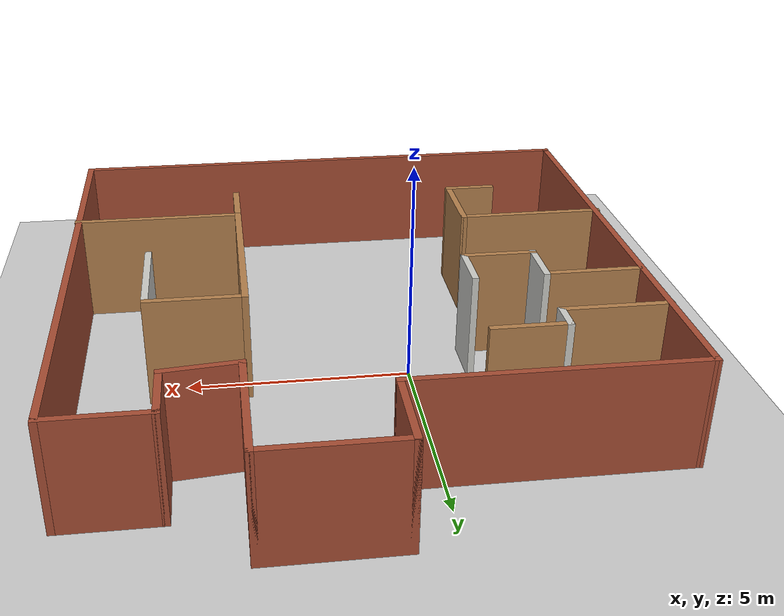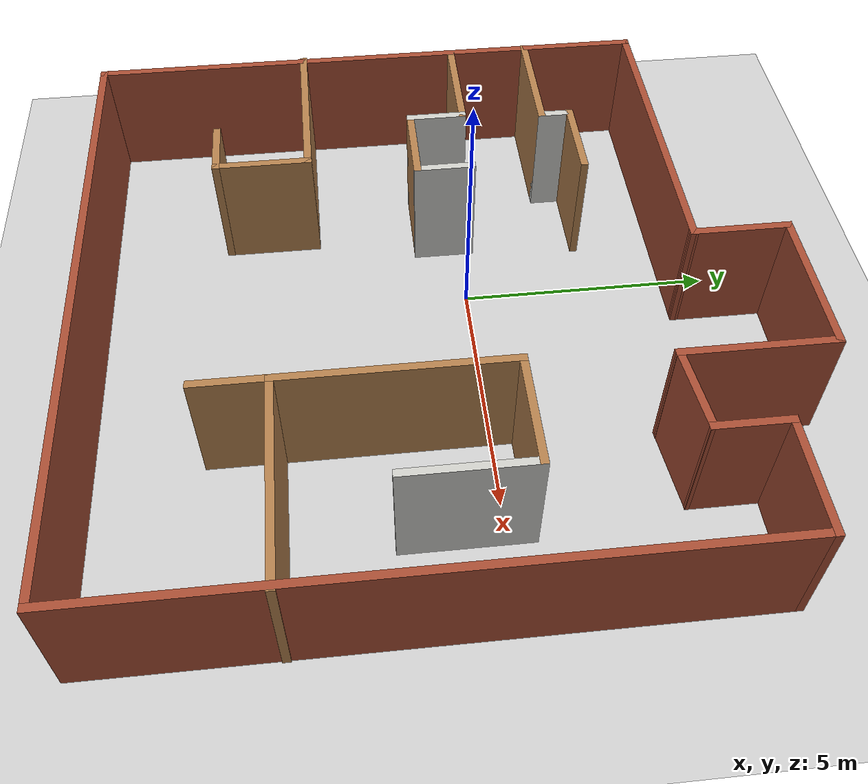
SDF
<sdf version="1.6">
 <world name="default">
  <light name="sun" type="directional">
   <pose>0 0 10 0 -0 0</pose>
   <diffuse>0.8 0.8 0.8 1</diffuse>
   <specular>0.2 0.2 0.2 1</specular>
   <attenuation>
    <range>1000</range>
    <constant>0.9</constant>
    <linear>0.01</linear>
    <quadratic>0.001</quadratic>
   </attenuation>
   <direction>-0.5 0.1 -0.9</direction>
  </light>
  <model name="ground_plane">
   <static>1</static>
   <link name="link">
    <collision name="collision">
     <geometry><plane><normal>0 0 1</normal><size>100 100</size></plane></geometry>
     <surface>
      <contact><collide_bitmask>65535</collide_bitmask></contact>
      <friction><ode><mu>100</mu><mu2>50</mu2></ode></friction>
     </surface>
    </collision>
    <visual name="visual">
     <cast_shadows>0</cast_shadows>
     <geometry><plane><normal>0 0 1</normal><size>100 100</size></plane></geometry>
     <material>
      <script><uri>file://media/materials/scripts/gazebo.material</uri><name>Gazebo/Grey</name></script>
     </material>
    </visual>
   </link>
  </model>
  <gravity>0 0 -9.8</gravity>
  <magnetic_field>6e-06 2.3e-05 -4.2e-05</magnetic_field>
  <atmosphere type="adiabatic"/>
  <physics name="default_physics" default="0" type="ode">
   <max_step_size>0.001</max_step_size>
   <real_time_factor>1</real_time_factor>
   <real_time_update_rate>1000</real_time_update_rate>
  </physics>
  <scene><ambient>0.4 0.4 0.4 1</ambient><background>0.7 0.7 0.7 1</background><shadows>1</shadows></scene>
  <spherical_coordinates>
   <surface_model>EARTH_WGS84</surface_model>
   <latitude_deg>0</latitude_deg>
   <longitude_deg>0</longitude_deg>
   <elevation>0</elevation>
   <heading_deg>0</heading_deg>
  </spherical_coordinates>
  <model name="office">
   <pose>1.14162 -0.696952 0 0 -0 0</pose>
   <link name="Wall_11">
    <collision name="Wall_11_Collision">
     <geometry><box><size>3 0.15 2.5</size></box></geometry>
     <pose>0 0 1.25 0 -0 0</pose>
    </collision>
    <visual name="Wall_11_Visual">
     <pose>0 0 1.25 0 -0 0</pose>
     <geometry><box><size>3 0.15 2.5</size></box></geometry>
     <material>
      <script><uri>file://media/materials/scripts/gazebo.material</uri><name>Gazebo/Bricks</name></script>
      <ambient>1 1 1 1</ambient>
     </material>
     <meta><layer>0</layer></meta>
    </visual>
    <pose>1.22438 6.71795 0 0 -0 0</pose>
   </link>
   <link name="Wall_12">
    <collision name="Wall_12_Collision">
     <geometry><box><size>3 0.15 2.5</size></box></geometry>
     <pose>0 0 1.25 0 -0 0</pose>
    </collision>
    <visual name="Wall_12_Visual">
     <pose>0 0 1.25 0 -0 0</pose>
     <geometry><box><size>3 0.15 2.5</size></box></geometry>
     <material>
      <script><uri>file://media/materials/scripts/gazebo.material</uri><name>Gazebo/Bricks</name></script>
      <ambient>1 1 1 1</ambient>
     </material>
     <meta><layer>0</layer></meta>
    </visual>
    <pose>2.64938 5.29295 0 0 -0 -1.5708</pose>
   </link>
   <link name="Wall_13">
    <collision name="Wall_13_Collision">
     <geometry><box><size>1.7259 0.15 2.5</size></box></geometry>
     <pose>0 0 1.25 0 -0 0</pose>
    </collision>
    <visual name="Wall_13_Visual">
     <pose>0 0 1.25 0 -0 0</pose>
     <geometry><box><size>1.7259 0.15 2.5</size></box></geometry>
     <material>
      <script><uri>file://media/materials/scripts/gazebo.material</uri><name>Gazebo/Bricks</name></script>
      <ambient>1 1 1 1</ambient>
     </material>
     <meta><layer>0</layer></meta>
    </visual>
    <pose>3.43305 3.95 0 0 -0 0.104321</pose>
   </link>
   <link name="Wall_14">
    <collision name="Wall_14_Collision">
     <geometry><box><size>1.5 0.15 2.5</size></box></geometry>
     <pose>0 0 1.25 0 -0 0</pose>
    </collision>
    <visual name="Wall_14_Visual">
     <pose>0 0 1.25 0 -0 0</pose>
     <geometry><box><size>1.5 0.15 2.5</size></box></geometry>
     <material>
      <script><uri>file://media/materials/scripts/gazebo.material</uri><name>Gazebo/Bricks</name></script>
      <ambient>1 1 1 1</ambient>
     </material>
     <meta><layer>0</layer></meta>
    </visual>
    <pose>4.21671 4.70705 0 0 -0 1.5708</pose>
   </link>
   <link name="Wall_15">
    <collision name="Wall_15_Collision">
     <geometry><box><size>2.25 0.15 2.5</size></box></geometry>
     <pose>0 0 1.25 0 -0 0</pose>
    </collision>
    <visual name="Wall_15_Visual">
     <pose>0 0 1.25 0 -0 0</pose>
     <geometry><box><size>2.25 0.15 2.5</size></box></geometry>
     <material>
      <script><uri>file://media/materials/scripts/gazebo.material</uri><name>Gazebo/Bricks</name></script>
      <ambient>1 1 1 1</ambient>
     </material>
     <meta><layer>0</layer></meta>
    </visual>
    <pose>5.26671 5.38205 0 0 -0 0</pose>
   </link>
   <link name="Wall_17">
    <collision name="Wall_17_Collision">
     <geometry><box><size>3.5 0.15 2.5</size></box></geometry>
     <pose>0 0 1.25 0 -0 0</pose>
    </collision>
    <visual name="Wall_17_Visual">
     <pose>0 0 1.25 0 -0 0</pose>
     <geometry><box><size>3.5 0.15 2.5</size></box></geometry>
     <material>
      <script><uri>file://media/materials/scripts/gazebo.material</uri><name>Gazebo/Wood</name></script>
      <ambient>1 1 1 1</ambient>
     </material>
     <meta><layer>0</layer></meta>
    </visual>
    <pose>-4.666 -2.36563 0 0 -0 0</pose>
   </link>
   <link name="Wall_18">
    <collision name="Wall_18_Collision">
     <geometry><box><size>2 0.15 2.5</size></box></geometry>
     <pose>0 0 1.25 0 -0 0</pose>
    </collision>
    <visual name="Wall_18_Visual">
     <pose>0 0 1.25 0 -0 0</pose>
     <geometry><box><size>2 0.15 2.5</size></box></geometry>
     <material>
      <script><uri>file://media/materials/scripts/gazebo.material</uri><name>Gazebo/Wood</name></script>
      <ambient>1 1 1 1</ambient>
     </material>
     <meta><layer>0</layer></meta>
    </visual>
    <pose>-2.991 -3.29063 0 0 -0 -1.5708</pose>
   </link>
   <link name="Wall_19">
    <collision name="Wall_19_Collision">
     <geometry><box><size>1.25 0.15 2.5</size></box></geometry>
     <pose>0 0 1.25 0 -0 0</pose>
    </collision>
    <visual name="Wall_19_Visual">
     <pose>0 0 1.25 0 -0 0</pose>
     <geometry><box><size>1.25 0.15 2.5</size></box></geometry>
     <material>
      <script><uri>file://media/materials/scripts/gazebo.material</uri><name>Gazebo/Wood</name></script>
      <ambient>1 1 1 1</ambient>
     </material>
     <meta><layer>0</layer></meta>
    </visual>
    <pose>-3.541 -4.21563 0 0 -0 3.14159</pose>
   </link>
   <link name="Wall_23">
    <collision name="Wall_23_Collision">
     <geometry><box><size>4.5 0.15 2.5</size></box></geometry>
     <pose>0 0 1.25 0 -0 0</pose>
    </collision>
    <visual name="Wall_23_Visual">
     <pose>0 0 1.25 0 -0 0</pose>
     <geometry><box><size>4.5 0.15 2.5</size></box></geometry>
     <material>
      <script><uri>file://media/materials/scripts/gazebo.material</uri><name>Gazebo/Wood</name></script>
      <ambient>1 1 1 1</ambient>
     </material>
     <meta><layer>0</layer></meta>
    </visual>
    <pose>2.491 -1.00463 0 0 -0 -1.5708</pose>
   </link>
   <link name="Wall_24">
    <collision name="Wall_24_Collision">
     <geometry><box><size>4 0.15 2.5</size></box></geometry>
     <pose>0 0 1.25 0 -0 0</pose>
    </collision>
    <visual name="Wall_24_Visual">
     <pose>0 0 1.25 0 -0 0</pose>
     <geometry><box><size>4 0.15 2.5</size></box></geometry>
     <material>
      <script><uri>file://media/materials/scripts/gazebo.material</uri><name>Gazebo/Wood</name></script>
      <ambient>1 1 1 1</ambient>
     </material>
     <meta><layer>0</layer></meta>
    </visual>
    <pose>4.416 -3.17963 0 0 -0 0</pose>
   </link>
   <link name="Wall_26">
    <collision name="Wall_26_Collision">
     <geometry><box><size>1.5 0.15 2.5</size></box></geometry>
     <pose>0 0 1.25 0 -0 0</pose>
    </collision>
    <visual name="Wall_26_Visual">
     <pose>0 0 1.25 0 -0 0</pose>
     <geometry><box><size>1.5 0.15 2.5</size></box></geometry>
     <material>
      <script><uri>file://media/materials/scripts/gazebo.material</uri><name>Gazebo/Wood</name></script>
      <ambient>1 1 1 1</ambient>
     </material>
     <meta><layer>0</layer></meta>
    </visual>
    <pose>2.491 -3.85463 0 0 -0 -1.5708</pose>
   </link>
   <link name="Wall_28">
    <collision name="Wall_28_Collision">
     <geometry><box><size>2.25 0.15 2.5</size></box></geometry>
     <pose>0 0 1.25 0 -0 0</pose>
    </collision>
    <visual name="Wall_28_Visual">
     <pose>0 0 1.25 0 -0 0</pose>
     <geometry><box><size>2.25 0.15 2.5</size></box></geometry>
     <material>
      <script><uri>file://media/materials/scripts/gazebo.material</uri><name>Gazebo/Wood</name></script>
      <ambient>1 1 1 1</ambient>
     </material>
     <meta><layer>0</layer></meta>
    </visual>
    <pose>3.541 1.17037 0 0 -0 0</pose>
   </link>
   <link name="Wall_29">
    <collision name="Wall_29_Collision">
     <geometry><box><size>2.5 0.15 2.5</size></box></geometry>
     <pose>0 0 1.25 0 -0 0</pose>
    </collision>
    <visual name="Wall_29_Visual">
     <pose>0 0 1.250 0 -0 0</pose>
     <geometry><box><size>2.5 0.15 2.5</size></box></geometry>
     <material>
      <script><uri>file://media/materials/scripts/gazebo.material</uri><name>Gazebo/CeilingTiled</name></script>
      <ambient>1 1 1 1</ambient>
     </material>
     <meta><layer>0</layer></meta>
    </visual>
    <pose>4.591 -0.004631 0 0 -0 -1.5708</pose>
   </link>
   <link name="Wall_3">
    <collision name="Wall_3_Collision">
     <geometry><box><size>6.25 0.15 2.5</size></box></geometry>
     <pose>0 0 1.25 0 -0 0</pose>
    </collision>
    <visual name="Wall_3_Visual">
     <pose>0 0 1.25 0 -0 0</pose>
     <geometry><box><size>6.25 0.15 2.5</size></box></geometry>
     <material>
      <script><uri>file://media/materials/scripts/gazebo.material</uri><name>Gazebo/Bricks</name></script>
      <ambient>1 1 1 1</ambient>
     </material>
     <meta><layer>0</layer></meta>
    </visual>
    <pose>-3.25067 4.87552 0 0 -0 -0.002482</pose>
   </link>
   <link name="Wall_31">
    <collision name="Wall_31_Collision">
     <geometry><box><size>2.5 0.15 2.5</size></box></geometry>
     <pose>0 0 1.25 0 -0 0</pose>
    </collision>
    <visual name="Wall_31_Visual">
     <pose>0 0 1.25 0 -0 0</pose>
     <geometry><box><size>2.5 0.15 2.5</size></box></geometry>
     <material>
      <script><uri>file://media/materials/scripts/gazebo.material</uri><name>Gazebo/Wood</name></script>
      <ambient>1 1 1 1</ambient>
     </material>
     <meta><layer>0</layer></meta>
    </visual>
    <pose>-5.13415 2.57795 0 0 -0 0</pose>
   </link>
   <link name="Wall_33">
    <collision name="Wall_33_Collision">
     <geometry><box><size>2.25 0.15 2.5</size></box></geometry>
     <pose>0 0 1.25 0 -0 0</pose>
    </collision>
    <visual name="Wall_33_Visual">
     <pose>0 0 1.25 0 -0 0</pose>
     <geometry><box><size>2.25 0.15 2.5</size></box></geometry>
     <material>
      <script><uri>file://media/materials/scripts/gazebo.material</uri><name>Gazebo/Wood</name></script>
      <ambient>1 1 1 1</ambient>
     </material>
     <meta><layer>0</layer></meta>
    </visual>
    <pose>-5.16841 0.91443 0 0 -0 0</pose>
   </link>
   <link name="Wall_34">
    <collision name="Wall_34_Collision">
     <geometry><box><size>1.25 0.15 2.5</size></box></geometry>
     <pose>0 0 1.25 0 -0 0</pose>
    </collision>
    <visual name="Wall_34_Visual">
     <pose>0 0 1.25 0 -0 0</pose>
     <geometry><box><size>1.25 0.15 2.5</size></box></geometry>
     <material>
      <script><uri>file://media/materials/scripts/gazebo.material</uri><name>Gazebo/CeilingTiled</name></script>
      <ambient>1 1 1 1</ambient>
     </material>
     <meta><layer>0</layer></meta>
    </visual>
    <pose>-4.11841 0.364431 0 0 -0 -1.5708</pose>
   </link>
   <link name="Wall_35">
    <collision name="Wall_35_Collision">
     <geometry><box><size>1.75 0.15 2.5</size></box></geometry>
     <pose>0 0 1.25 0 -0 0</pose>
    </collision>
    <visual name="Wall_35_Visual">
     <pose>0 0 1.25 0 -0 0</pose>
     <geometry><box><size>1.75 0.15 2.5</size></box></geometry>
     <material>
      <script><uri>file://media/materials/scripts/gazebo.material</uri><name>Gazebo/Wood</name></script>
      <ambient>1 1 1 1</ambient>
     </material>
     <meta><layer>0</layer></meta>
    </visual>
    <pose>-3.31841 -0.185569 0 0 -0 0</pose>
   </link>
   <link name="Wall_36">
    <collision name="Wall_36_Collision">
     <geometry><box><size>1.25 0.15 2.5</size></box></geometry>
     <pose>0 0 1.25 0 -0 0</pose>
    </collision>
    <visual name="Wall_36_Visual">
     <pose>0 0 1.25 0 -0 0</pose>
     <geometry><box><size>1.25 0.15 2.5</size></box></geometry>
     <material>
      <script><uri>file://media/materials/scripts/gazebo.material</uri><name>Gazebo/CeilingTiled</name></script>
      <ambient>1 1 1 1</ambient>
     </material>
     <meta><layer>0</layer></meta>
    </visual>
    <pose>-2.51841 0.364431 0 0 -0 1.5708</pose>
   </link>
   <link name="Wall_38">
    <collision name="Wall_38_Collision">
     <geometry><box><size>0.75 0.15 2.5</size></box></geometry>
     <pose>0 0 1.25 0 -0 0</pose>
    </collision>
    <visual name="Wall_38_Visual">
     <pose>0 0 1.25 0 -0 0</pose>
     <geometry><box><size>0.75 0.15 2.5</size></box></geometry>
     <material>
      <script><uri>file://media/materials/scripts/gazebo.material</uri><name>Gazebo/CeilingTiled</name></script>
      <ambient>1 1 1 1</ambient>
     </material>
     <meta><layer>0</layer></meta>
    </visual>
    <pose>-3.95915 2.87795 0 0 -0 1.5708</pose>
   </link>
   <link name="Wall_39">
    <collision name="Wall_39_Collision">
     <geometry><box><size>1.75 0.15 2.5</size></box></geometry>
     <pose>0 0 1.25 0 -0 0</pose>
    </collision>
    <visual name="Wall_39_Visual">
     <pose>0 0 1.25 0 -0 0</pose>
     <geometry><box><size>1.75 0.15 2.5</size></box></geometry>
     <material>
      <script><uri>file://media/materials/scripts/gazebo.material</uri><name>Gazebo/Wood</name></script>
      <ambient>1 1 1 1</ambient>
     </material>
     <meta><layer>0</layer></meta>
    </visual>
    <pose>-3.15915 3.17795 0 0 -0 0</pose>
   </link>
   <link name="Wall_4">
    <collision name="Wall_4_Collision">
     <geometry><box><size>2 0.15 2.5</size></box></geometry>
     <pose>0 0 1.25 0 -0 0</pose>
    </collision>
    <visual name="Wall_4_Visual">
     <pose>0 0 1.25 0 -0 0</pose>
     <geometry><box><size>2 0.15 2.5</size></box></geometry>
     <material>
      <script><uri>file://media/materials/scripts/gazebo.material</uri><name>Gazebo/Bricks</name></script>
      <ambient>1 1 1 1</ambient>
     </material>
     <meta><layer>0</layer></meta>
    </visual>
    <pose>-0.200617 5.79295 0 0 -0 1.5708</pose>
   </link>
   <link name="Wall_6">
    <collision name="Wall_6_Collision">
     <geometry><box><size>11.75 0.15 2.5</size></box></geometry>
     <pose>0 0 1.25 0 -0 0</pose>
    </collision>
    <visual name="Wall_6_Visual">
     <pose>0 0 1.25 0 -0 0</pose>
     <geometry><box><size>11.75 0.15 2.5</size></box></geometry>
     <material>
      <script><uri>file://media/materials/scripts/gazebo.material</uri><name>Gazebo/Bricks</name></script>
      <ambient>1 1 1 1</ambient>
     </material>
     <meta><layer>0</layer></meta>
    </visual>
    <pose>-6.30073 -0.91691 0 0 -0 -1.5708</pose>
   </link>
   <link name="Wall_8">
    <collision name="Wall_8_Collision">
     <geometry><box><size>12.737 0.15 2.5</size></box></geometry>
     <pose>0 0 1.25 0 -0 0</pose>
    </collision>
    <visual name="Wall_8_Visual">
     <pose>0 0 1.25 0 -0 0</pose>
     <geometry><box><size>12.737 0.15 2.5</size></box></geometry>
     <material>
      <script><uri>file://media/materials/scripts/gazebo.material</uri><name>Gazebo/Bricks</name></script>
      <ambient>1 1 1 1</ambient>
     </material>
     <meta><layer>0</layer></meta>
    </visual>
    <pose>-0.007216 -6.71743 0 0 -0 -8.2e-05</pose>
   </link>
   <link name="Wall_9">
    <collision name="Wall_9_Collision">
     <geometry><box><size>12.25 0.15 2.5</size></box></geometry>
     <pose>0 0 1.25 0 -0 0</pose>
    </collision>
    <visual name="Wall_9_Visual">
     <pose>0 0 1.25 0 -0 0</pose>
     <geometry><box><size>12.25 0.15 2.5</size></box></geometry>
     <material>
      <script><uri>file://media/materials/scripts/gazebo.material</uri><name>Gazebo/Bricks</name></script>
      <ambient>1 1 1 1</ambient>
     </material>
     <meta><layer>0</layer></meta>
    </visual>
    <pose>6.31671 -0.667946 0 0 -0 1.5708</pose>
   </link>
   <static>1</static>
  </model>
 </world>
</sdf>
